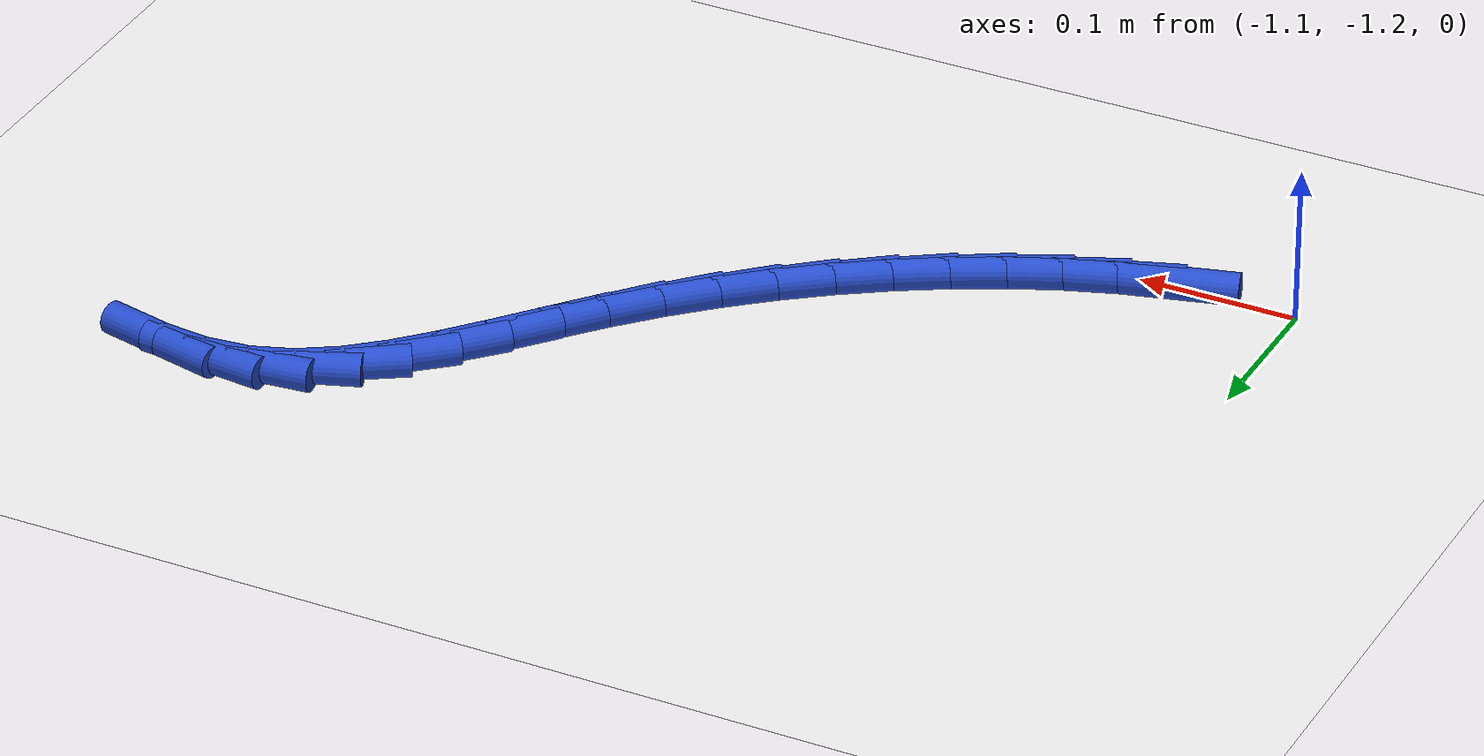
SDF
<sdf version="1.6">
 <world name="default">
  <model name="ground_plane">
   <static>1</static>
   <link name="link">
    <collision name="collision">
     <geometry><plane><normal>0 0 1</normal><size>100 100</size></plane></geometry>
     <surface><friction><ode><mu>100</mu><mu2>50</mu2></ode></friction></surface>
    </collision>
    <visual name="visual">
     <cast_shadows>0</cast_shadows>
     <geometry><plane><normal>0 0 1</normal><size>100 100</size></plane></geometry>
     <material>
      <script><uri>file://media/materials/scripts/gazebo.material</uri><name>Gazebo/WhiteGlow</name></script>
     </material>
    </visual>
   </link>
  </model>
  <model name="line">
   <link name="link_182">
    <pose>-1.0251183369986567 -1.1907229501797902 0.01 0 1.57 0.26782167795197054</pose>
    <collision name="collision">
     <geometry><cylinder><radius>0.01</radius><length>0.08</length></cylinder></geometry>
    </collision>
    <visual name="visual">
     <material>
      <script><name>Gazebo/Blue</name><uri>file://media/materials/scripts/gazebo.material</uri></script>
     </material>
     <geometry><cylinder><radius>0.01</radius><length>0.08</length></cylinder></geometry>
    </visual>
   </link>
   <link name="link_183">
    <pose>-0.9940667659273014 -1.1822019527307603 0.01 0 1.57 0.34065725057683616</pose>
    <collision name="collision">
     <geometry><cylinder><radius>0.01</radius><length>0.08</length></cylinder></geometry>
    </collision>
    <visual name="visual">
     <material>
      <script><name>Gazebo/Blue</name><uri>file://media/materials/scripts/gazebo.material</uri></script>
     </material>
     <geometry><cylinder><radius>0.01</radius><length>0.08</length></cylinder></geometry>
    </visual>
   </link>
   <link name="link_184">
    <pose>-0.9631197098710564 -1.1712319473052952 0.01 0 1.57 0.4086863281500713</pose>
    <collision name="collision">
     <geometry><cylinder><radius>0.01</radius><length>0.08</length></cylinder></geometry>
    </collision>
    <visual name="visual">
     <material>
      <script><name>Gazebo/Blue</name><uri>file://media/materials/scripts/gazebo.material</uri></script>
     </material>
     <geometry><cylinder><radius>0.01</radius><length>0.08</length></cylinder></geometry>
    </visual>
   </link>
   <link name="link_185">
    <pose>-0.9324500749391476 -1.1579498403824715 0.01 0 1.57 0.47280853303741505</pose>
    <collision name="collision">
     <geometry><cylinder><radius>0.01</radius><length>0.08</length></cylinder></geometry>
    </collision>
    <visual name="visual">
     <material>
      <script><name>Gazebo/Blue</name><uri>file://media/materials/scripts/gazebo.material</uri></script>
     </material>
     <geometry><cylinder><radius>0.01</radius><length>0.08</length></cylinder></geometry>
    </visual>
   </link>
   <link name="link_186">
    <pose>-0.9022307672408029 -1.1424925384413656 0.01 0 1.57 0.5338835064607885</pose>
    <collision name="collision">
     <geometry><cylinder><radius>0.01</radius><length>0.08</length></cylinder></geometry>
    </collision>
    <visual name="visual">
     <material>
      <script><name>Gazebo/Blue</name><uri>file://media/materials/scripts/gazebo.material</uri></script>
     </material>
     <geometry><cylinder><radius>0.01</radius><length>0.08</length></cylinder></geometry>
    </visual>
   </link>
   <link name="link_187">
    <pose>-0.8726346928852482 -1.1249969479610546 0.01 0 1.57 0.5927236333442268</pose>
    <collision name="collision">
     <geometry><cylinder><radius>0.01</radius><length>0.08</length></cylinder></geometry>
    </collision>
    <visual name="visual">
     <material>
      <script><name>Gazebo/Blue</name><uri>file://media/materials/scripts/gazebo.material</uri></script>
     </material>
     <geometry><cylinder><radius>0.01</radius><length>0.08</length></cylinder></geometry>
    </visual>
   </link>
   <link name="link_188">
    <pose>-0.8438347579817095 -1.1055999754206145 0.01 0 1.57 0.6500975367713684</pose>
    <collision name="collision">
     <geometry><cylinder><radius>0.01</radius><length>0.08</length></cylinder></geometry>
    </collision>
    <visual name="visual">
     <material>
      <script><name>Gazebo/Blue</name><uri>file://media/materials/scripts/gazebo.material</uri></script>
     </material>
     <geometry><cylinder><radius>0.01</radius><length>0.08</length></cylinder></geometry>
    </visual>
   </link>
   <link name="link_189">
    <pose>-0.8160038686394138 -1.084438527299122 0.01 0 1.57 0.7067394164255585</pose>
    <collision name="collision">
     <geometry><cylinder><radius>0.01</radius><length>0.08</length></cylinder></geometry>
    </collision>
    <visual name="visual">
     <material>
      <script><name>Gazebo/Blue</name><uri>file://media/materials/scripts/gazebo.material</uri></script>
     </material>
     <geometry><cylinder><radius>0.01</radius><length>0.08</length></cylinder></geometry>
    </visual>
   </link>
   <link name="link_190">
    <pose>-0.7893149309675871 -1.0616495100756533 0.01 0 1.57 0.7633611034200236</pose>
    <collision name="collision">
     <geometry><cylinder><radius>0.01</radius><length>0.08</length></cylinder></geometry>
    </collision>
    <visual name="visual">
     <material>
      <script><name>Gazebo/Blue</name><uri>file://media/materials/scripts/gazebo.material</uri></script>
     </material>
     <geometry><cylinder><radius>0.01</radius><length>0.08</length></cylinder></geometry>
    </visual>
   </link>
   <link name="link_191">
    <pose>-0.7639408510754562 -1.0373698302292857 0.01 0 1.57 0.8204652247059956</pose>
    <collision name="collision">
     <geometry><cylinder><radius>0.01</radius><length>0.08</length></cylinder></geometry>
    </collision>
    <visual name="visual">
     <material>
      <script><name>Gazebo/Blue</name><uri>file://media/materials/scripts/gazebo.material</uri></script>
     </material>
     <geometry><cylinder><radius>0.01</radius><length>0.08</length></cylinder></geometry>
    </visual>
   </link>
   <link name="link_192">
    <pose>-0.7400502288129891 -1.0117420302928581 0.01 0 1.57 0.8665206729568893</pose>
    <collision name="collision">
     <geometry><cylinder><radius>0.01</radius><length>0.08</length></cylinder></geometry>
    </collision>
    <visual name="visual">
     <material>
      <script><name>Gazebo/Blue</name><uri>file://media/materials/scripts/gazebo.material</uri></script>
     </material>
     <geometry><cylinder><radius>0.01</radius><length>0.08</length></cylinder></geometry>
    </visual>
   </link>
   <link name="link_193">
    <pose>-0.7175466474343833 -0.9852555078520394 0.01 0 1.57 0.8828253059054514</pose>
    <collision name="collision">
     <geometry><cylinder><radius>0.01</radius><length>0.08</length></cylinder></geometry>
    </collision>
    <visual name="visual">
     <material>
      <script><name>Gazebo/Blue</name><uri>file://media/materials/scripts/gazebo.material</uri></script>
     </material>
     <geometry><cylinder><radius>0.01</radius><length>0.08</length></cylinder></geometry>
    </visual>
   </link>
   <link name="link_194">
    <pose>-0.6959190496732902 -0.9589423440902392 0.01 0 1.57 0.8663621137971609</pose>
    <collision name="collision">
     <geometry><cylinder><radius>0.01</radius><length>0.08</length></cylinder></geometry>
    </collision>
    <visual name="visual">
     <material>
      <script><name>Gazebo/Blue</name><uri>file://media/materials/scripts/gazebo.material</uri></script>
     </material>
     <geometry><cylinder><radius>0.01</radius><length>0.08</length></cylinder></geometry>
    </visual>
   </link>
   <link name="link_195">
    <pose>-0.674620254699653 -0.9338818988926509 0.01 0 1.57 0.812765697749686</pose>
    <collision name="collision">
     <geometry><cylinder><radius>0.01</radius><length>0.08</length></cylinder></geometry>
    </collision>
    <visual name="visual">
     <material>
      <script><name>Gazebo/Blue</name><uri>file://media/materials/scripts/gazebo.material</uri></script>
     </material>
     <geometry><cylinder><radius>0.01</radius><length>0.08</length></cylinder></geometry>
    </visual>
   </link>
   <link name="link_196">
    <pose>-0.6531030816834144 -0.9111535321444673 0.01 0 1.57 0.7142246529433598</pose>
    <collision name="collision">
     <geometry><cylinder><radius>0.01</radius><length>0.08</length></cylinder></geometry>
    </collision>
    <visual name="visual">
     <material>
      <script><name>Gazebo/Blue</name><uri>file://media/materials/scripts/gazebo.material</uri></script>
     </material>
     <geometry><cylinder><radius>0.01</radius><length>0.08</length></cylinder></geometry>
    </visual>
   </link>
   <link name="link_197">
    <pose>-0.6308203497945173 -0.8918366037308814 0.01 0 1.57 0.5610021140326376</pose>
    <collision name="collision">
     <geometry><cylinder><radius>0.01</radius><length>0.08</length></cylinder></geometry>
    </collision>
    <visual name="visual">
     <material>
      <script><name>Gazebo/Blue</name><uri>file://media/materials/scripts/gazebo.material</uri></script>
     </material>
     <geometry><cylinder><radius>0.01</radius><length>0.08</length></cylinder></geometry>
    </visual>
   </link>
   <link name="link_198">
    <pose>-0.6072248782029048 -0.8770104735370862 0.01 0 1.57 0.3487524707596497</pose>
    <collision name="collision">
     <geometry><cylinder><radius>0.01</radius><length>0.08</length></cylinder></geometry>
    </collision>
    <visual name="visual">
     <material>
      <script><name>Gazebo/Blue</name><uri>file://media/materials/scripts/gazebo.material</uri></script>
     </material>
     <geometry><cylinder><radius>0.01</radius><length>0.08</length></cylinder></geometry>
    </visual>
   </link>
   <link name="link_199">
    <pose>-0.5817694860785194 -0.8677545014482744 0.01 0 1.57 0.10115229139189849</pose>
    <collision name="collision">
     <geometry><cylinder><radius>0.01</radius><length>0.08</length></cylinder></geometry>
    </collision>
    <visual name="visual">
     <material>
      <script><name>Gazebo/Blue</name><uri>file://media/materials/scripts/gazebo.material</uri></script>
     </material>
     <geometry><cylinder><radius>0.01</radius><length>0.08</length></cylinder></geometry>
    </visual>
   </link>
   <link name="link_200">
    <pose>-0.5540043998555996 -0.8649363813261842 0.01 0 1.57 -0.0959126867038445</pose>
    <collision name="collision">
     <geometry><cylinder><radius>0.01</radius><length>0.08</length></cylinder></geometry>
    </collision>
    <visual name="visual">
     <material>
      <script><name>Gazebo/Blue</name><uri>file://media/materials/scripts/gazebo.material</uri></script>
     </material>
     <geometry><cylinder><radius>0.01</radius><length>0.08</length></cylinder></geometry>
    </visual>
   </link>
   <link name="link_201">
    <pose>-0.5242265373444649 -0.8678012463799696 0.01 0 1.57 -0.22235204618492777</pose>
    <collision name="collision">
     <geometry><cylinder><radius>0.01</radius><length>0.08</length></cylinder></geometry>
    </collision>
    <visual name="visual">
     <material>
      <script><name>Gazebo/Blue</name><uri>file://media/materials/scripts/gazebo.material</uri></script>
     </material>
     <geometry><cylinder><radius>0.01</radius><length>0.08</length></cylinder></geometry>
    </visual>
   </link>
  </model>
 </world>
</sdf>
